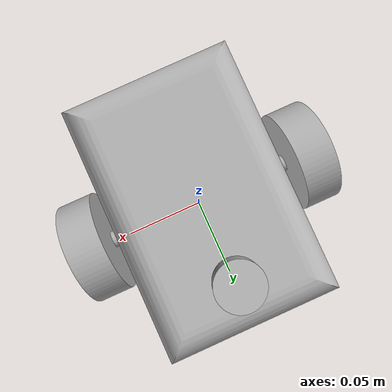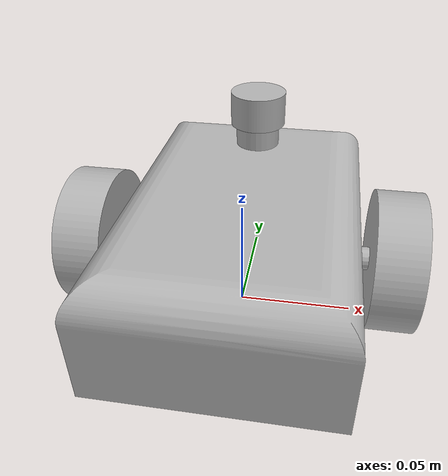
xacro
<?xml version="1.0" ?>
<robot name="Enthiran2" xmlns:xacro="http://www.ros.org/wiki/xacro">

<xacro:include filename="$(find Enthiran2_description)/urdf/materials.xacro" />
<xacro:include filename="$(find Enthiran2_description)/urdf/Enthiran2.trans" />
<xacro:include filename="$(find Enthiran2_description)/urdf/Enthiran2.gazebo" />
<link name="base_link">
  <inertial>
    <origin xyz="-1.2249073499643295e-13 0.00019115440648833078 0.034129777019820354" rpy="0 0 0"/>
    <mass value="5.805608278992979"/>
    <inertia ixx="0.011921" iyy="0.005851" izz="0.015343" ixy="-0.0" iyz="-3.4e-05" ixz="-0.0"/>
  </inertial>
  <visual>
    <origin xyz="0 0 0" rpy="0 0 0"/>
    <geometry>
      <mesh filename="file://$(find Enthiran2_description)/meshes/base_link.stl" scale="0.001 0.001 0.001"/>
    </geometry>
    <material name="silver"/>
  </visual>
  <collision>
    <origin xyz="0 0 0" rpy="0 0 0"/>
    <geometry>
      <mesh filename="file://$(find Enthiran2_description)/meshes/base_link.stl" scale="0.001 0.001 0.001"/>
    </geometry>
  </collision>
</link>

<link name="right_wheel_1">
  <inertial>
    <origin xyz="-0.010000000000000002 0.0 -3.469446951953614e-18" rpy="0 0 0"/>
    <mass value="0.44390704195223785"/>
    <inertia ixx="0.0002" iyy="0.000115" izz="0.000115" ixy="0.0" iyz="0.0" ixz="0.0"/>
  </inertial>
  <visual>
    <origin xyz="0.055 -0.0 -0.03" rpy="0 0 0"/>
    <geometry>
      <mesh filename="file://$(find Enthiran2_description)/meshes/right_wheel_1.stl" scale="0.001 0.001 0.001"/>
    </geometry>
    <material name="silver"/>
  </visual>
  <collision>
    <origin xyz="0.055 -0.0 -0.03" rpy="0 0 0"/>
    <geometry>
      <mesh filename="file://$(find Enthiran2_description)/meshes/right_wheel_1.stl" scale="0.001 0.001 0.001"/>
    </geometry>
  </collision>
</link>

<link name="left_wheel_1">
  <inertial>
    <origin xyz="0.010000000000000002 0.0 -3.469446951953614e-18" rpy="0 0 0"/>
    <mass value="0.44390704195223785"/>
    <inertia ixx="0.0002" iyy="0.000115" izz="0.000115" ixy="0.0" iyz="0.0" ixz="-0.0"/>
  </inertial>
  <visual>
    <origin xyz="-0.055 -0.0 -0.03" rpy="0 0 0"/>
    <geometry>
      <mesh filename="file://$(find Enthiran2_description)/meshes/left_wheel_1.stl" scale="0.001 0.001 0.001"/>
    </geometry>
    <material name="silver"/>
  </visual>
  <collision>
    <origin xyz="-0.055 -0.0 -0.03" rpy="0 0 0"/>
    <geometry>
      <mesh filename="file://$(find Enthiran2_description)/meshes/left_wheel_1.stl" scale="0.001 0.001 0.001"/>
    </geometry>
  </collision>
</link>

<link name="lidar_1">
  <inertial>
    <origin xyz="2.412509625050848e-18 0.0 0.0075001518940361195" rpy="0 0 0"/>
    <mass value="0.057800396087530896"/>
    <inertia ixx="3e-06" iyy="3e-06" izz="5e-06" ixy="0.0" iyz="-0.0" ixz="0.0"/>
  </inertial>
  <visual>
    <origin xyz="-0.0 -0.045 -0.070001" rpy="0 0 0"/>
    <geometry>
      <mesh filename="file://$(find Enthiran2_description)/meshes/lidar_1.stl" scale="0.001 0.001 0.001"/>
    </geometry>
    <material name="silver"/>
  </visual>
  <collision>
    <origin xyz="-0.0 -0.045 -0.070001" rpy="0 0 0"/>
    <geometry>
      <mesh filename="file://$(find Enthiran2_description)/meshes/lidar_1.stl" scale="0.001 0.001 0.001"/>
    </geometry>
  </collision>
</link>

<joint name="Revolute 1" type="continuous">
  <origin xyz="-0.055 0.0 0.03" rpy="0 0 0"/>
  <parent link="base_link"/>
  <child link="right_wheel_1"/>
  <axis xyz="-1.0 0.0 0.0"/>
</joint>

<joint name="Revolute 2" type="continuous">
  <origin xyz="0.055 0.0 0.03" rpy="0 0 0"/>
  <parent link="base_link"/>
  <child link="left_wheel_1"/>
  <axis xyz="1.0 0.0 0.0"/>
</joint>

<joint name="Rigid 3" type="fixed">
  <origin xyz="0.0 0.045 0.070001" rpy="0 0 0"/>
  <parent link="base_link"/>
  <child link="lidar_1"/>
</joint>

</robot>

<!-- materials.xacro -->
<robot name="Enthiran2" xmlns:xacro="http://www.ros.org/wiki/xacro" >

<material name="silver">
  <color rgba="0.700 0.700 0.700 1.000"/>
</material>

</robot>

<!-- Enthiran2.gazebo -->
<robot name="Enthiran2" xmlns:xacro="http://www.ros.org/wiki/xacro" >

<xacro:property name="body_color" value="Gazebo/Silver" />

<gazebo>
  <plugin name="control" filename="libgazebo_ros_control.so"/>
</gazebo>
<gazebo reference="base_link">
  <material>${body_color}</material>
  <mu1>0.2</mu1>
  <mu2>0.2</mu2>
  <self_collide>true</self_collide>
  <gravity>true</gravity>
</gazebo>

<gazebo reference="right_wheel_1">
  <material>${body_color}</material>
  <mu1>0.2</mu1>
  <mu2>0.2</mu2>
  <self_collide>true</self_collide>
</gazebo>

<gazebo reference="left_wheel_1">
  <material>${body_color}</material>
  <mu1>0.2</mu1>
  <mu2>0.2</mu2>
  <self_collide>true</self_collide>
</gazebo>

<gazebo reference="lidar_1">
  <material>${body_color}</material>
  <mu1>0.2</mu1>
  <mu2>0.2</mu2>
  <self_collide>true</self_collide>
</gazebo>

</robot>
